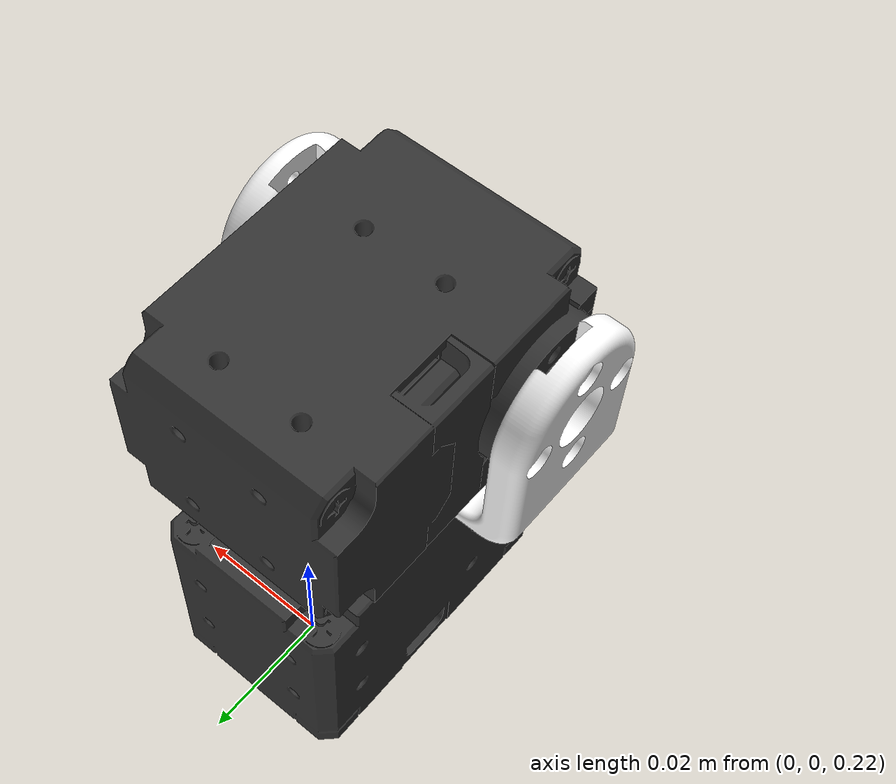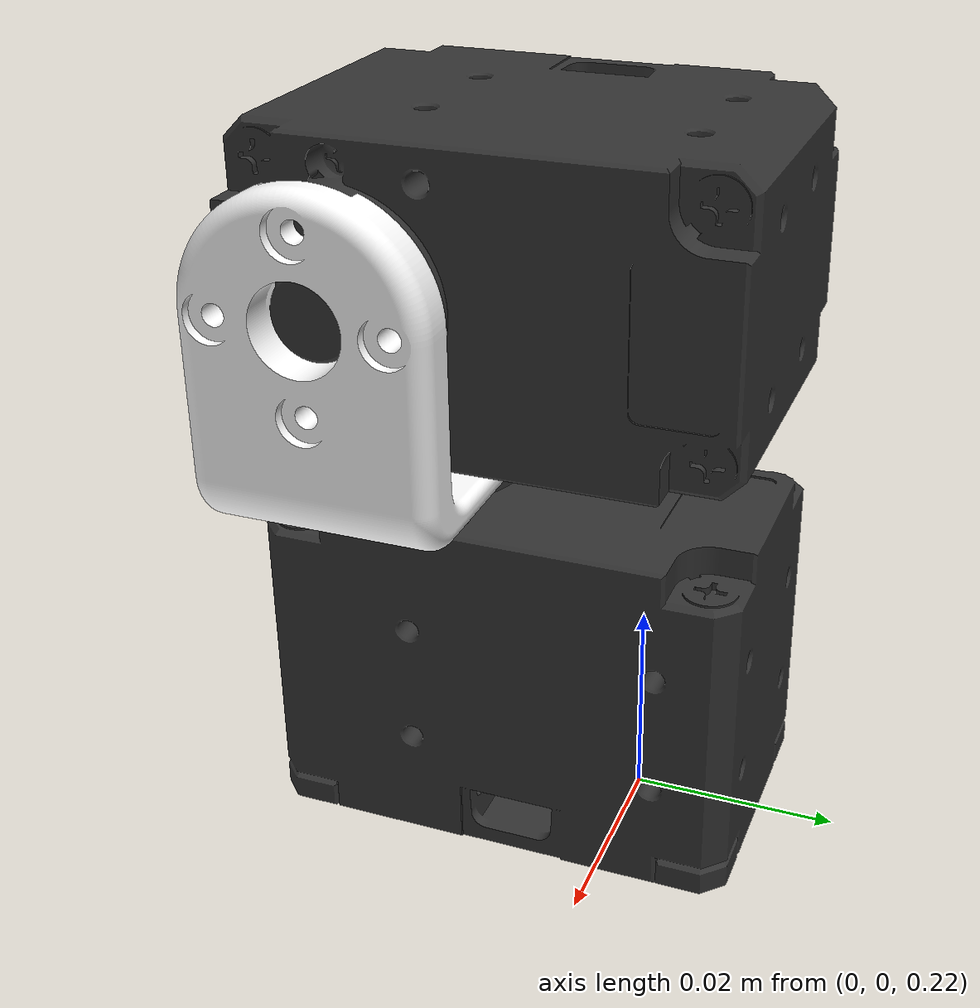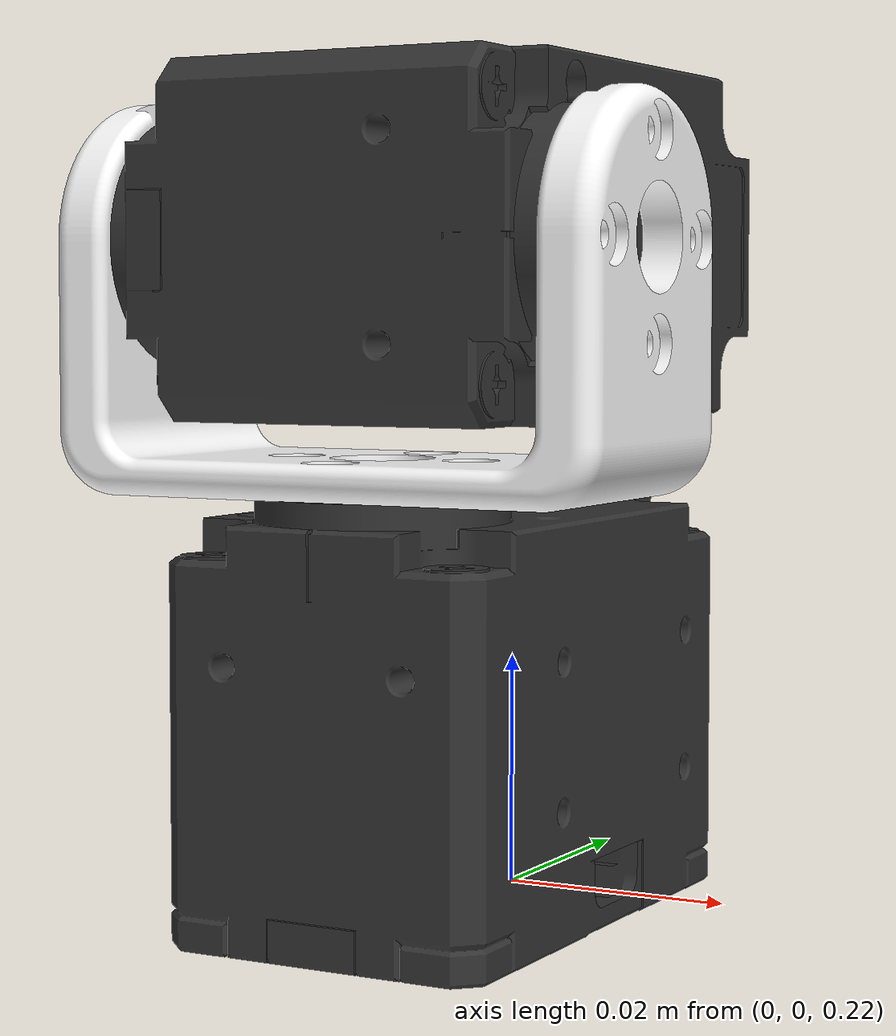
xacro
<?xml version="1.0"?>
<robot name="aron" xmlns:xacro="http://ros.org/wiki/xacro">

  <xacro:arg name="robot_name" default="aron"/>
  <xacro:arg name="base_link_frame" default="base_link"/>
  <xacro:arg name="use_world_frame" default="false"/>

  <material name="black">
    <color rgba="0.2 0.2 0.2 1.0"/>
  </material>

  <material name="white">
    <color rgba="1.0 1.0 1.0 1.0"/>
  </material>

  <xacro:if value="$(arg use_world_frame)">
    <link name="world"/>
    <joint name="fixed" type="fixed">
      <parent link="world"/>
      <child link="$(arg robot_name)/$(arg base_link_frame)"/>
    </joint>
  </xacro:if>

  <link name="$(arg robot_name)/$(arg base_link_frame)">
    <visual>
      <origin rpy="0 0 0" xyz="0 0 0"/>
      <geometry>
        <mesh filename="package://aron_description/meshes/XL-430_Pan.stl" scale="0.001 0.001 0.001"/>
      </geometry>
      <material name="black"/>
    </visual>
  </link>

  <!--     HEAD  PAN          -->

  <link name="$(arg robot_name)/pan_link">
    <visual>
      <origin rpy="0 0 0" xyz="0 0.0228 -0.2365"/>
      <geometry>
        <mesh filename="package://aron_description/meshes/Neck.stl" scale="0.001 0.001 0.001"/>
      </geometry>
      <material name="white"/>
    </visual>
  </link>

  <joint name="pan" type="revolute">
    <axis xyz="0 0 1"/>
    <limit effort="3" lower="${radians(-90)}" upper="${radians(90)}" velocity="${pi}"/>
    <origin rpy="0 0 0" xyz="0 -0.0228 0.2365"/>
    <parent link="$(arg robot_name)/base_link"/>
    <child link="$(arg robot_name)/pan_link"/>
  </joint>

  <transmission name="trans_pan">
    <type>transmission_interface/SimpleTransmission</type>
    <joint name="pan">
      <hardwareInterface>hardware_interface/EffortJointInterface</hardwareInterface>
    </joint>
    <actuator name="pan_motor">
      <mechanicalReduction>1</mechanicalReduction>
    </actuator>
  </transmission>

  <!--      HEAD TILT         -->

  <link name="$(arg robot_name)/tilt_link">
    <visual>
      <origin rpy="0 0 0" xyz="0 0.0228 -0.2757"/>
      <geometry>
        <mesh filename="package://aron_description/meshes/XL-430_Tilt.stl" scale="0.001 0.001 0.001"/>
      </geometry>
      <material name="black"/>
    </visual>
  </link>

  <joint name="tilt" type="revolute">
    <axis xyz="1 0 0"/>
    <limit effort="3" lower="${radians(-12)}" upper="${radians(47)}" velocity="${pi}"/>
    <origin rpy="0 0 0" xyz="0 0 0.0392"/>
    <parent link="$(arg robot_name)/pan_link"/>
    <child link="$(arg robot_name)/tilt_link"/>
  </joint>

  <transmission name="trans_tilt">
    <type>transmission_interface/SimpleTransmission</type>
    <joint name="tilt">
      <hardwareInterface>hardware_interface/EffortJointInterface</hardwareInterface>
    </joint>
    <actuator name="tilt_motor">
      <mechanicalReduction>1</mechanicalReduction>
    </actuator>
  </transmission>

</robot>
